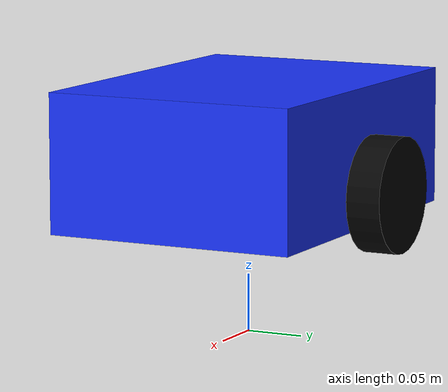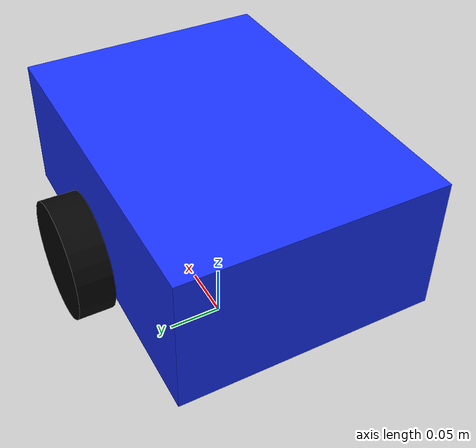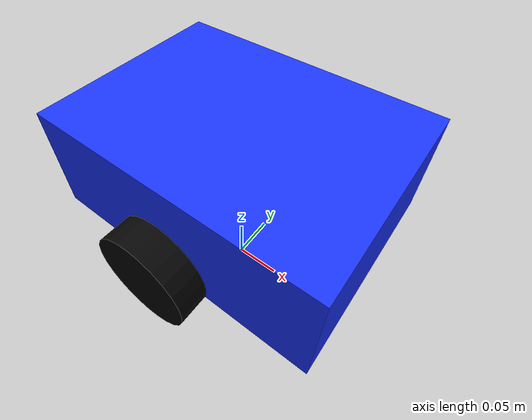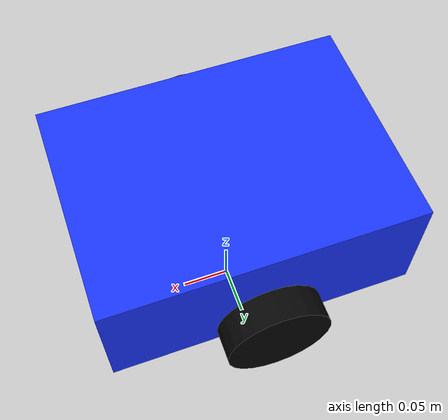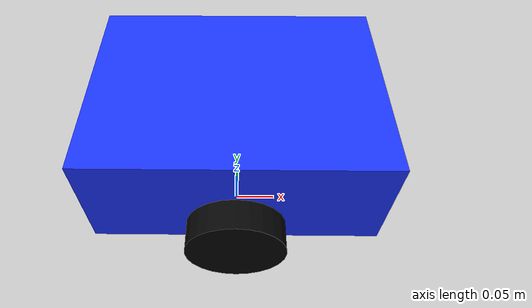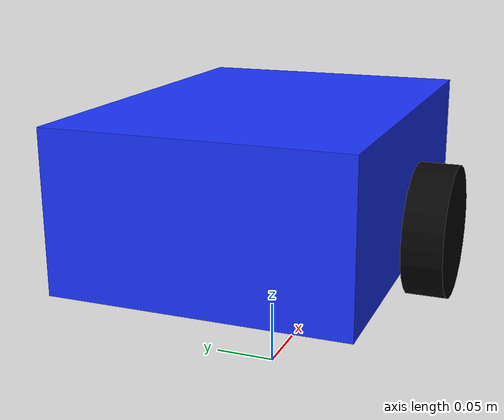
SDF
<?xml version="1.0" ?>
<sdf version="1.9">
  <model name="simple_robot">
    <pose>0 0 0.08 0 0 0</pose>

    <link name="base_link">
      <pose>0 0 0.08 0 0 0</pose>

      <inertial>
        <mass>1.0</mass>
        <inertia>
          <ixx>0.01</ixx>
          <iyy>0.01</iyy>
          <izz>0.01</izz>
        </inertia>
      </inertial>

      <collision name="base_collision">
        <geometry>
          <box>
            <size>0.30 0.22 0.12</size>
          </box>
        </geometry>
      </collision>

      <visual name="base_visual">
        <geometry>
          <box>
            <size>0.30 0.22 0.12</size>
          </box>
        </geometry>
        <material>
          <ambient>0.1 0.2 1.0 1</ambient>
          <diffuse>0.1 0.2 1.0 1</diffuse>
        </material>
      </visual>
    </link>

    <link name="left_wheel">
      <pose>0 0.13 0.05 1.5708 0 0</pose>
      <inertial>
        <mass>0.1</mass>
        <inertia>
          <ixx>0.0001</ixx>
          <iyy>0.0001</iyy>
          <izz>0.0001</izz>
        </inertia>
      </inertial>

      <collision name="left_wheel_collision">
        <geometry>
          <cylinder>
            <radius>0.05</radius>
            <length>0.03</length>
          </cylinder>
        </geometry>
      </collision>

      <visual name="left_wheel_visual">
        <geometry>
          <cylinder>
            <radius>0.05</radius>
            <length>0.03</length>
          </cylinder>
        </geometry>
        <material>
          <ambient>0.02 0.02 0.02 1</ambient>
          <diffuse>0.02 0.02 0.02 1</diffuse>
        </material>
      </visual>
    </link>

    <link name="right_wheel">
      <pose>0 -0.13 0.05 1.5708 0 0</pose>
      <inertial>
        <mass>0.1</mass>
        <inertia>
          <ixx>0.0001</ixx>
          <iyy>0.0001</iyy>
          <izz>0.0001</izz>
        </inertia>
      </inertial>

      <collision name="right_wheel_collision">
        <geometry>
          <cylinder>
            <radius>0.05</radius>
            <length>0.03</length>
          </cylinder>
        </geometry>
      </collision>

      <visual name="right_wheel_visual">
        <geometry>
          <cylinder>
            <radius>0.05</radius>
            <length>0.03</length>
          </cylinder>
        </geometry>
        <material>
          <ambient>0.02 0.02 0.02 1</ambient>
          <diffuse>0.02 0.02 0.02 1</diffuse>
        </material>
      </visual>
    </link>

    <joint name="left_wheel_joint" type="revolute">
      <parent>base_link</parent>
      <child>left_wheel</child>
      <pose>0 0.13 0.05 0 0 0</pose>
      <axis>
        <xyz>0 1 0</xyz>
      </axis>
    </joint>

    <joint name="right_wheel_joint" type="revolute">
      <parent>base_link</parent>
      <child>right_wheel</child>
      <pose>0 -0.13 0.05 0 0 0</pose>
      <axis>
        <xyz>0 1 0</xyz>
      </axis>
    </joint>

    <plugin
      filename="gz-sim-diff-drive-system"
      name="gz::sim::systems::DiffDrive">
      <left_joint>left_wheel_joint</left_joint>
      <right_joint>right_wheel_joint</right_joint>
      <wheel_separation>0.26</wheel_separation>
      <wheel_radius>0.05</wheel_radius>
      <topic>/cmd_vel</topic>
      <odom_topic>/odom</odom_topic>
      <tf_topic>/tf</tf_topic>
      <frame_id>odom</frame_id>
      <child_frame_id>base_link</child_frame_id>
    </plugin>

  </model>
</sdf>
